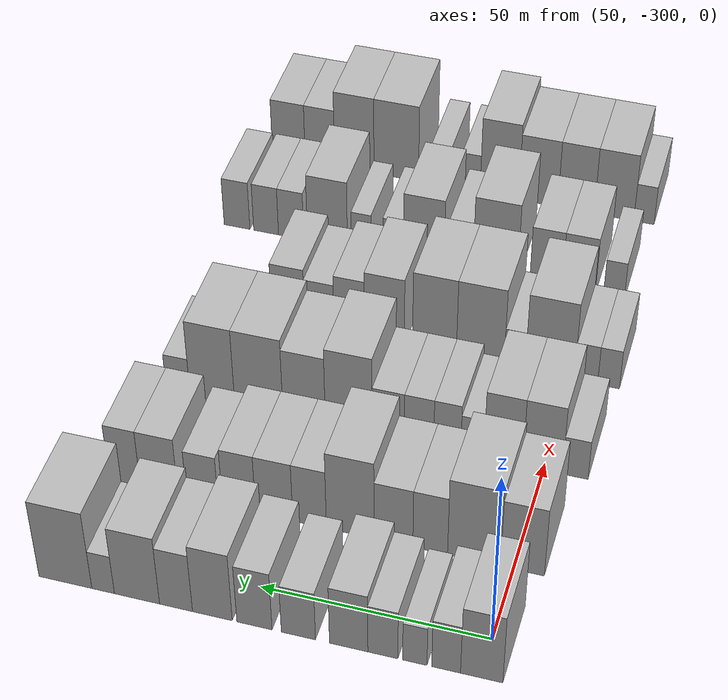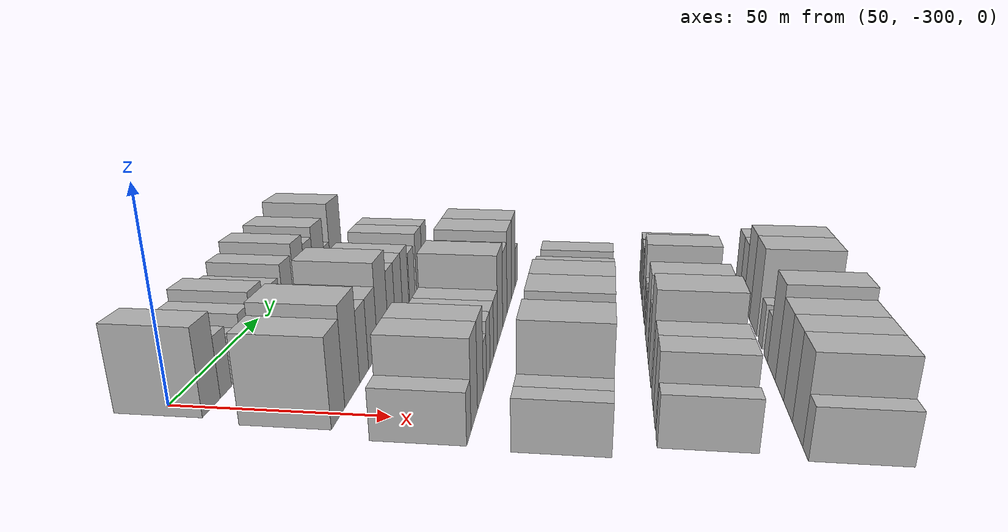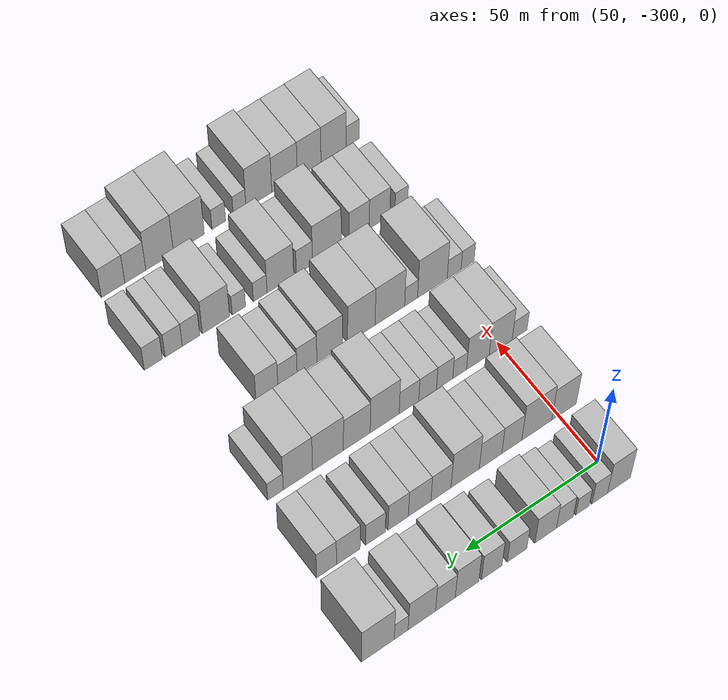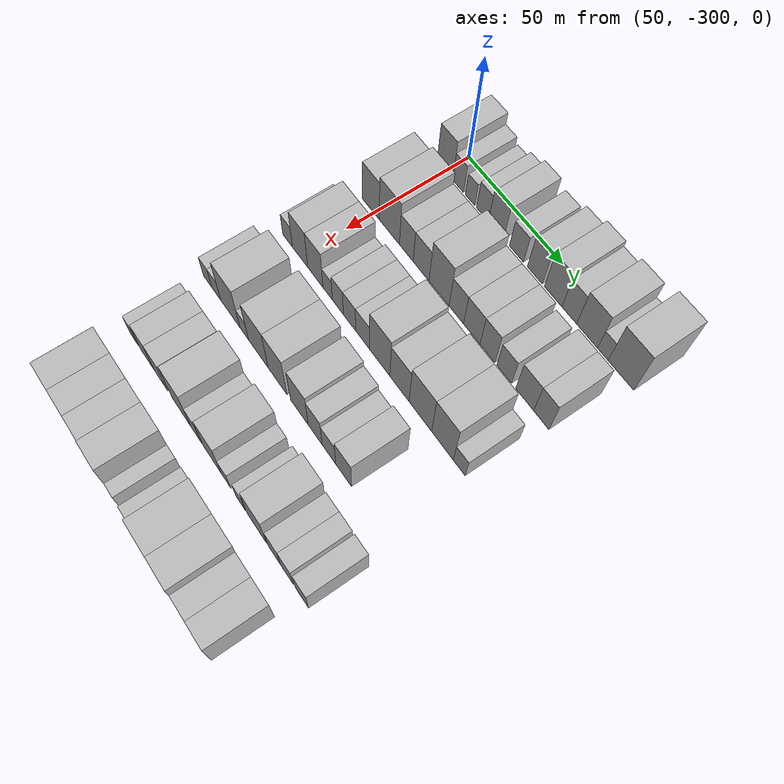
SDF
<sdf version="1.6">
 <world name="default">
  <model name="building_24">
   <static>1</static>
   <pose>50.0000 -300.2380 0 0.000000 0.000000 0.000000</pose>
   <link name="link">
    <pose>0 0 10.50 0 0 0</pose>
    <collision name="collision"><geometry><box><size>20.0000 8.7996 21.0000</size></box></geometry></collision>
    <visual name="visual">
     <cast_shadows>0</cast_shadows>
     <geometry><box><size>20.0000 8.7996 21.0000</size></box></geometry>
     <material>
      <script>
       <uri>model://HANNAS_wall/materials/scripts</uri>
       <uri>model://HANNAS_wall/materials/textures</uri>
       <name>vrc/HANNAS_wall</name>
      </script>
     </material>
    </visual>
   </link>
  </model>
  <model name="building_25">
   <static>1</static>
   <pose>50.0000 -292.8315 0 0.000000 0.000000 0.000000</pose>
   <link name="link">
    <pose>0 0 7.50 0 0 0</pose>
    <collision name="collision"><geometry><box><size>20.0000 6.0135 15.0000</size></box></geometry></collision>
    <visual name="visual">
     <cast_shadows>0</cast_shadows>
     <geometry><box><size>20.0000 6.0135 15.0000</size></box></geometry>
     <material>
      <script>
       <uri>model://HANNAS_wall/materials/scripts</uri>
       <uri>model://HANNAS_wall/materials/textures</uri>
       <name>vrc/HANNAS_wall</name>
      </script>
     </material>
    </visual>
   </link>
  </model>
  <model name="building_26">
   <static>1</static>
   <pose>50.0000 -286.2679 0 0.000000 0.000000 0.000000</pose>
   <link name="link">
    <pose>0 0 6.00 0 0 0</pose>
    <collision name="collision"><geometry><box><size>20.0000 5.1137 12.0000</size></box></geometry></collision>
    <visual name="visual">
     <cast_shadows>0</cast_shadows>
     <geometry><box><size>20.0000 5.1137 12.0000</size></box></geometry>
     <material>
      <script>
       <uri>model://HANNAS_wall/materials/scripts</uri>
       <uri>model://HANNAS_wall/materials/textures</uri>
       <name>vrc/HANNAS_wall</name>
      </script>
     </material>
    </visual>
   </link>
  </model>
  <model name="building_27">
   <static>1</static>
   <pose>50.0000 -279.5277 0 0.000000 0.000000 0.000000</pose>
   <link name="link">
    <pose>0 0 7.50 0 0 0</pose>
    <collision name="collision"><geometry><box><size>20.0000 6.3666 15.0000</size></box></geometry></collision>
    <visual name="visual">
     <cast_shadows>0</cast_shadows>
     <geometry><box><size>20.0000 6.3666 15.0000</size></box></geometry>
     <material>
      <script>
       <uri>model://HANNAS_wall/materials/scripts</uri>
       <uri>model://HANNAS_wall/materials/textures</uri>
       <name>vrc/HANNAS_wall</name>
      </script>
     </material>
    </visual>
   </link>
  </model>
  <model name="building_28">
   <static>1</static>
   <pose>50.0000 -272.2532 0 0.000000 0.000000 0.000000</pose>
   <link name="link">
    <pose>0 0 9.00 0 0 0</pose>
    <collision name="collision"><geometry><box><size>20.0000 8.1825 18.0000</size></box></geometry></collision>
    <visual name="visual">
     <cast_shadows>0</cast_shadows>
     <geometry><box><size>20.0000 8.1825 18.0000</size></box></geometry>
     <material>
      <script>
       <uri>model://HANNAS_wall/materials/scripts</uri>
       <uri>model://HANNAS_wall/materials/textures</uri>
       <name>vrc/HANNAS_wall</name>
      </script>
     </material>
    </visual>
   </link>
  </model>
  <model name="building_29">
   <static>1</static>
   <pose>50.0000 -261.4840 0 0.000000 0.000000 0.000000</pose>
   <link name="link">
    <pose>0 0 7.50 0 0 0</pose>
    <collision name="collision"><geometry><box><size>20.0000 7.3559 15.0000</size></box></geometry></collision>
    <visual name="visual">
     <cast_shadows>0</cast_shadows>
     <geometry><box><size>20.0000 7.3559 15.0000</size></box></geometry>
     <material>
      <script>
       <uri>model://HANNAS_wall/materials/scripts</uri>
       <uri>model://HANNAS_wall/materials/textures</uri>
       <name>vrc/HANNAS_wall</name>
      </script>
     </material>
    </visual>
   </link>
  </model>
  <model name="building_30">
   <static>1</static>
   <pose>50.0000 -251.9875 0 0.000000 0.000000 0.000000</pose>
   <link name="link">
    <pose>0 0 9.00 0 0 0</pose>
    <collision name="collision"><geometry><box><size>20.0000 7.6372 18.0000</size></box></geometry></collision>
    <visual name="visual">
     <cast_shadows>0</cast_shadows>
     <geometry><box><size>20.0000 7.6372 18.0000</size></box></geometry>
     <material>
      <script>
       <uri>model://HANNAS_wall/materials/scripts</uri>
       <uri>model://HANNAS_wall/materials/textures</uri>
       <name>vrc/HANNAS_wall</name>
      </script>
     </material>
    </visual>
   </link>
  </model>
  <model name="building_31">
   <static>1</static>
   <pose>50.0000 -242.8185 0 0.000000 0.000000 0.000000</pose>
   <link name="link">
    <pose>0 0 10.50 0 0 0</pose>
    <collision name="collision"><geometry><box><size>20.0000 8.7008 21.0000</size></box></geometry></collision>
    <visual name="visual">
     <cast_shadows>0</cast_shadows>
     <geometry><box><size>20.0000 8.7008 21.0000</size></box></geometry>
     <material>
      <script>
       <uri>model://HANNAS_wall/materials/scripts</uri>
       <uri>model://HANNAS_wall/materials/textures</uri>
       <name>vrc/HANNAS_wall</name>
      </script>
     </material>
    </visual>
   </link>
  </model>
  <model name="building_32">
   <static>1</static>
   <pose>50.0000 -234.8366 0 0.000000 0.000000 0.000000</pose>
   <link name="link">
    <pose>0 0 9.00 0 0 0</pose>
    <collision name="collision"><geometry><box><size>20.0000 7.2631 18.0000</size></box></geometry></collision>
    <visual name="visual">
     <cast_shadows>0</cast_shadows>
     <geometry><box><size>20.0000 7.2631 18.0000</size></box></geometry>
     <material>
      <script>
       <uri>model://HANNAS_wall/materials/scripts</uri>
       <uri>model://HANNAS_wall/materials/textures</uri>
       <name>vrc/HANNAS_wall</name>
      </script>
     </material>
    </visual>
   </link>
  </model>
  <model name="building_33">
   <static>1</static>
   <pose>50.0000 -226.1902 0 0.000000 0.000000 0.000000</pose>
   <link name="link">
    <pose>0 0 10.50 0 0 0</pose>
    <collision name="collision"><geometry><box><size>20.0000 10.0296 21.0000</size></box></geometry></collision>
    <visual name="visual">
     <cast_shadows>0</cast_shadows>
     <geometry><box><size>20.0000 10.0296 21.0000</size></box></geometry>
     <material>
      <script>
       <uri>model://HANNAS_wall/materials/scripts</uri>
       <uri>model://HANNAS_wall/materials/textures</uri>
       <name>vrc/HANNAS_wall</name>
      </script>
     </material>
    </visual>
   </link>
  </model>
  <model name="building_34">
   <static>1</static>
   <pose>50.0000 -218.6514 0 0.000000 0.000000 0.000000</pose>
   <link name="link">
    <pose>0 0 6.00 0 0 0</pose>
    <collision name="collision"><geometry><box><size>20.0000 5.0481 12.0000</size></box></geometry></collision>
    <visual name="visual">
     <cast_shadows>0</cast_shadows>
     <geometry><box><size>20.0000 5.0481 12.0000</size></box></geometry>
     <material>
      <script>
       <uri>model://HANNAS_wall/materials/scripts</uri>
       <uri>model://HANNAS_wall/materials/textures</uri>
       <name>vrc/HANNAS_wall</name>
      </script>
     </material>
    </visual>
   </link>
  </model>
  <model name="building_35">
   <static>1</static>
   <pose>50.0000 -210.1765 0 0.000000 0.000000 0.000000</pose>
   <link name="link">
    <pose>0 0 12.00 0 0 0</pose>
    <collision name="collision"><geometry><box><size>20.0000 11.9017 24.0000</size></box></geometry></collision>
    <visual name="visual">
     <cast_shadows>0</cast_shadows>
     <geometry><box><size>20.0000 11.9017 24.0000</size></box></geometry>
     <material>
      <script>
       <uri>model://HANNAS_wall/materials/scripts</uri>
       <uri>model://HANNAS_wall/materials/textures</uri>
       <name>vrc/HANNAS_wall</name>
      </script>
     </material>
    </visual>
   </link>
  </model>
  <model name="building_144">
   <static>1</static>
   <pose>79.0000 -301.9454 0 0.000000 0.000000 0.000000</pose>
   <link name="link">
    <pose>0 0 10.50 0 0 0</pose>
    <collision name="collision"><geometry><box><size>20.0000 9.5213 21.0000</size></box></geometry></collision>
    <visual name="visual">
     <cast_shadows>0</cast_shadows>
     <geometry><box><size>20.0000 9.5213 21.0000</size></box></geometry>
     <material>
      <script>
       <uri>model://HANNAS_wall/materials/scripts</uri>
       <uri>model://HANNAS_wall/materials/textures</uri>
       <name>vrc/HANNAS_wall</name>
      </script>
     </material>
    </visual>
   </link>
  </model>
  <model name="building_145">
   <static>1</static>
   <pose>79.0000 -291.4034 0 0.000000 0.000000 0.000000</pose>
   <link name="link">
    <pose>0 0 12.00 0 0 0</pose>
    <collision name="collision"><geometry><box><size>20.0000 11.5627 24.0000</size></box></geometry></collision>
    <visual name="visual">
     <cast_shadows>0</cast_shadows>
     <geometry><box><size>20.0000 11.5627 24.0000</size></box></geometry>
     <material>
      <script>
       <uri>model://HANNAS_wall/materials/scripts</uri>
       <uri>model://HANNAS_wall/materials/textures</uri>
       <name>vrc/HANNAS_wall</name>
      </script>
     </material>
    </visual>
   </link>
  </model>
  <model name="building_146">
   <static>1</static>
   <pose>79.0000 -281.8035 0 0.000000 0.000000 0.000000</pose>
   <link name="link">
    <pose>0 0 9.00 0 0 0</pose>
    <collision name="collision"><geometry><box><size>20.0000 7.6371 18.0000</size></box></geometry></collision>
    <visual name="visual">
     <cast_shadows>0</cast_shadows>
     <geometry><box><size>20.0000 7.6371 18.0000</size></box></geometry>
     <material>
      <script>
       <uri>model://HANNAS_wall/materials/scripts</uri>
       <uri>model://HANNAS_wall/materials/textures</uri>
       <name>vrc/HANNAS_wall</name>
      </script>
     </material>
    </visual>
   </link>
  </model>
  <model name="building_147">
   <static>1</static>
   <pose>79.0000 -273.6877 0 0.000000 0.000000 0.000000</pose>
   <link name="link">
    <pose>0 0 9.00 0 0 0</pose>
    <collision name="collision"><geometry><box><size>20.0000 8.5946 18.0000</size></box></geometry></collision>
    <visual name="visual">
     <cast_shadows>0</cast_shadows>
     <geometry><box><size>20.0000 8.5946 18.0000</size></box></geometry>
     <material>
      <script>
       <uri>model://HANNAS_wall/materials/scripts</uri>
       <uri>model://HANNAS_wall/materials/textures</uri>
       <name>vrc/HANNAS_wall</name>
      </script>
     </material>
    </visual>
   </link>
  </model>
  <model name="building_148">
   <static>1</static>
   <pose>79.0000 -264.0489 0 0.000000 0.000000 0.000000</pose>
   <link name="link">
    <pose>0 0 12.00 0 0 0</pose>
    <collision name="collision"><geometry><box><size>20.0000 10.6830 24.0000</size></box></geometry></collision>
    <visual name="visual">
     <cast_shadows>0</cast_shadows>
     <geometry><box><size>20.0000 10.6830 24.0000</size></box></geometry>
     <material>
      <script>
       <uri>model://HANNAS_wall/materials/scripts</uri>
       <uri>model://HANNAS_wall/materials/textures</uri>
       <name>vrc/HANNAS_wall</name>
      </script>
     </material>
    </visual>
   </link>
  </model>
  <model name="building_149">
   <static>1</static>
   <pose>79.0000 -254.9181 0 0.000000 0.000000 0.000000</pose>
   <link name="link">
    <pose>0 0 9.00 0 0 0</pose>
    <collision name="collision"><geometry><box><size>20.0000 7.5784 18.0000</size></box></geometry></collision>
    <visual name="visual">
     <cast_shadows>0</cast_shadows>
     <geometry><box><size>20.0000 7.5784 18.0000</size></box></geometry>
     <material>
      <script>
       <uri>model://HANNAS_wall/materials/scripts</uri>
       <uri>model://HANNAS_wall/materials/textures</uri>
       <name>vrc/HANNAS_wall</name>
      </script>
     </material>
    </visual>
   </link>
  </model>
  <model name="building_150">
   <static>1</static>
   <pose>79.0000 -246.9091 0 0.000000 0.000000 0.000000</pose>
   <link name="link">
    <pose>0 0 9.00 0 0 0</pose>
    <collision name="collision"><geometry><box><size>20.0000 8.4396 18.0000</size></box></geometry></collision>
    <visual name="visual">
     <cast_shadows>0</cast_shadows>
     <geometry><box><size>20.0000 8.4396 18.0000</size></box></geometry>
     <material>
      <script>
       <uri>model://HANNAS_wall/materials/scripts</uri>
       <uri>model://HANNAS_wall/materials/textures</uri>
       <name>vrc/HANNAS_wall</name>
      </script>
     </material>
    </visual>
   </link>
  </model>
  <model name="building_151">
   <static>1</static>
   <pose>79.0000 -238.9096 0 0.000000 0.000000 0.000000</pose>
   <link name="link">
    <pose>0 0 9.00 0 0 0</pose>
    <collision name="collision"><geometry><box><size>20.0000 7.5594 18.0000</size></box></geometry></collision>
    <visual name="visual">
     <cast_shadows>0</cast_shadows>
     <geometry><box><size>20.0000 7.5594 18.0000</size></box></geometry>
     <material>
      <script>
       <uri>model://HANNAS_wall/materials/scripts</uri>
       <uri>model://HANNAS_wall/materials/textures</uri>
       <name>vrc/HANNAS_wall</name>
      </script>
     </material>
    </visual>
   </link>
  </model>
  <model name="building_152">
   <static>1</static>
   <pose>79.0000 -230.4880 0 0.000000 0.000000 0.000000</pose>
   <link name="link">
    <pose>0 0 7.50 0 0 0</pose>
    <collision name="collision"><geometry><box><size>20.0000 7.2839 15.0000</size></box></geometry></collision>
    <visual name="visual">
     <cast_shadows>0</cast_shadows>
     <geometry><box><size>20.0000 7.2839 15.0000</size></box></geometry>
     <material>
      <script>
       <uri>model://HANNAS_wall/materials/scripts</uri>
       <uri>model://HANNAS_wall/materials/textures</uri>
       <name>vrc/HANNAS_wall</name>
      </script>
     </material>
    </visual>
   </link>
  </model>
  <model name="building_153">
   <static>1</static>
   <pose>79.0000 -220.4977 0 0.000000 0.000000 0.000000</pose>
   <link name="link">
    <pose>0 0 9.00 0 0 0</pose>
    <collision name="collision"><geometry><box><size>20.0000 8.6966 18.0000</size></box></geometry></collision>
    <visual name="visual">
     <cast_shadows>0</cast_shadows>
     <geometry><box><size>20.0000 8.6966 18.0000</size></box></geometry>
     <material>
      <script>
       <uri>model://HANNAS_wall/materials/scripts</uri>
       <uri>model://HANNAS_wall/materials/textures</uri>
       <name>vrc/HANNAS_wall</name>
      </script>
     </material>
    </visual>
   </link>
  </model>
  <model name="building_154">
   <static>1</static>
   <pose>79.0000 -212.5231 0 0.000000 0.000000 0.000000</pose>
   <link name="link">
    <pose>0 0 9.00 0 0 0</pose>
    <collision name="collision"><geometry><box><size>20.0000 7.2527 18.0000</size></box></geometry></collision>
    <visual name="visual">
     <cast_shadows>0</cast_shadows>
     <geometry><box><size>20.0000 7.2527 18.0000</size></box></geometry>
     <material>
      <script>
       <uri>model://HANNAS_wall/materials/scripts</uri>
       <uri>model://HANNAS_wall/materials/textures</uri>
       <name>vrc/HANNAS_wall</name>
      </script>
     </material>
    </visual>
   </link>
  </model>
  <model name="building_255">
   <static>1</static>
   <pose>108.0000 -307.1762 0 0.000000 0.000000 0.000000</pose>
   <link name="link">
    <pose>0 0 6.00 0 0 0</pose>
    <collision name="collision"><geometry><box><size>20.0000 5.7641 12.0000</size></box></geometry></collision>
    <visual name="visual">
     <cast_shadows>0</cast_shadows>
     <geometry><box><size>20.0000 5.7641 12.0000</size></box></geometry>
     <material>
      <script>
       <uri>model://HANNAS_wall/materials/scripts</uri>
       <uri>model://HANNAS_wall/materials/textures</uri>
       <name>vrc/HANNAS_wall</name>
      </script>
     </material>
    </visual>
   </link>
  </model>
  <model name="building_256">
   <static>1</static>
   <pose>108.0000 -299.8109 0 0.000000 0.000000 0.000000</pose>
   <link name="link">
    <pose>0 0 10.50 0 0 0</pose>
    <collision name="collision"><geometry><box><size>20.0000 8.9666 21.0000</size></box></geometry></collision>
    <visual name="visual">
     <cast_shadows>0</cast_shadows>
     <geometry><box><size>20.0000 8.9666 21.0000</size></box></geometry>
     <material>
      <script>
       <uri>model://HANNAS_wall/materials/scripts</uri>
       <uri>model://HANNAS_wall/materials/textures</uri>
       <name>vrc/HANNAS_wall</name>
      </script>
     </material>
    </visual>
   </link>
  </model>
  <model name="building_257">
   <static>1</static>
   <pose>108.0000 -290.8929 0 0.000000 0.000000 0.000000</pose>
   <link name="link">
    <pose>0 0 10.50 0 0 0</pose>
    <collision name="collision"><geometry><box><size>20.0000 8.8693 21.0000</size></box></geometry></collision>
    <visual name="visual">
     <cast_shadows>0</cast_shadows>
     <geometry><box><size>20.0000 8.8693 21.0000</size></box></geometry>
     <material>
      <script>
       <uri>model://HANNAS_wall/materials/scripts</uri>
       <uri>model://HANNAS_wall/materials/textures</uri>
       <name>vrc/HANNAS_wall</name>
      </script>
     </material>
    </visual>
   </link>
  </model>
  <model name="building_258">
   <static>1</static>
   <pose>108.0000 -283.8055 0 0.000000 0.000000 0.000000</pose>
   <link name="link">
    <pose>0 0 6.00 0 0 0</pose>
    <collision name="collision"><geometry><box><size>20.0000 5.3054 12.0000</size></box></geometry></collision>
    <visual name="visual">
     <cast_shadows>0</cast_shadows>
     <geometry><box><size>20.0000 5.3054 12.0000</size></box></geometry>
     <material>
      <script>
       <uri>model://HANNAS_wall/materials/scripts</uri>
       <uri>model://HANNAS_wall/materials/textures</uri>
       <name>vrc/HANNAS_wall</name>
      </script>
     </material>
    </visual>
   </link>
  </model>
  <model name="building_259">
   <static>1</static>
   <pose>108.0000 -278.0359 0 0.000000 0.000000 0.000000</pose>
   <link name="link">
    <pose>0 0 7.50 0 0 0</pose>
    <collision name="collision"><geometry><box><size>20.0000 6.2338 15.0000</size></box></geometry></collision>
    <visual name="visual">
     <cast_shadows>0</cast_shadows>
     <geometry><box><size>20.0000 6.2338 15.0000</size></box></geometry>
     <material>
      <script>
       <uri>model://HANNAS_wall/materials/scripts</uri>
       <uri>model://HANNAS_wall/materials/textures</uri>
       <name>vrc/HANNAS_wall</name>
      </script>
     </material>
    </visual>
   </link>
  </model>
  <model name="building_260">
   <static>1</static>
   <pose>108.0000 -271.5213 0 0.000000 0.000000 0.000000</pose>
   <link name="link">
    <pose>0 0 7.50 0 0 0</pose>
    <collision name="collision"><geometry><box><size>20.0000 6.7955 15.0000</size></box></geometry></collision>
    <visual name="visual">
     <cast_shadows>0</cast_shadows>
     <geometry><box><size>20.0000 6.7955 15.0000</size></box></geometry>
     <material>
      <script>
       <uri>model://HANNAS_wall/materials/scripts</uri>
       <uri>model://HANNAS_wall/materials/textures</uri>
       <name>vrc/HANNAS_wall</name>
      </script>
     </material>
    </visual>
   </link>
  </model>
  <model name="building_261">
   <static>1</static>
   <pose>108.0000 -264.3937 0 0.000000 0.000000 0.000000</pose>
   <link name="link">
    <pose>0 0 7.50 0 0 0</pose>
    <collision name="collision"><geometry><box><size>20.0000 7.4597 15.0000</size></box></geometry></collision>
    <visual name="visual">
     <cast_shadows>0</cast_shadows>
     <geometry><box><size>20.0000 7.4597 15.0000</size></box></geometry>
     <material>
      <script>
       <uri>model://HANNAS_wall/materials/scripts</uri>
       <uri>model://HANNAS_wall/materials/textures</uri>
       <name>vrc/HANNAS_wall</name>
      </script>
     </material>
    </visual>
   </link>
  </model>
  <model name="building_262">
   <static>1</static>
   <pose>108.0000 -255.1674 0 0.000000 0.000000 0.000000</pose>
   <link name="link">
    <pose>0 0 12.00 0 0 0</pose>
    <collision name="collision"><geometry><box><size>20.0000 10.9929 24.0000</size></box></geometry></collision>
    <visual name="visual">
     <cast_shadows>0</cast_shadows>
     <geometry><box><size>20.0000 10.9929 24.0000</size></box></geometry>
     <material>
      <script>
       <uri>model://HANNAS_wall/materials/scripts</uri>
       <uri>model://HANNAS_wall/materials/textures</uri>
       <name>vrc/HANNAS_wall</name>
      </script>
     </material>
    </visual>
   </link>
  </model>
  <model name="building_263">
   <static>1</static>
   <pose>108.0000 -244.6625 0 0.000000 0.000000 0.000000</pose>
   <link name="link">
    <pose>0 0 10.50 0 0 0</pose>
    <collision name="collision"><geometry><box><size>20.0000 10.0168 21.0000</size></box></geometry></collision>
    <visual name="visual">
     <cast_shadows>0</cast_shadows>
     <geometry><box><size>20.0000 10.0168 21.0000</size></box></geometry>
     <material>
      <script>
       <uri>model://HANNAS_wall/materials/scripts</uri>
       <uri>model://HANNAS_wall/materials/textures</uri>
       <name>vrc/HANNAS_wall</name>
      </script>
     </material>
    </visual>
   </link>
  </model>
  <model name="building_264">
   <static>1</static>
   <pose>108.0000 -233.8942 0 0.000000 0.000000 0.000000</pose>
   <link name="link">
    <pose>0 0 12.00 0 0 0</pose>
    <collision name="collision"><geometry><box><size>20.0000 11.5197 24.0000</size></box></geometry></collision>
    <visual name="visual">
     <cast_shadows>0</cast_shadows>
     <geometry><box><size>20.0000 11.5197 24.0000</size></box></geometry>
     <material>
      <script>
       <uri>model://HANNAS_wall/materials/scripts</uri>
       <uri>model://HANNAS_wall/materials/textures</uri>
       <name>vrc/HANNAS_wall</name>
      </script>
     </material>
    </visual>
   </link>
  </model>
  <model name="building_265">
   <static>1</static>
   <pose>108.0000 -222.7475 0 0.000000 0.000000 0.000000</pose>
   <link name="link">
    <pose>0 0 12.00 0 0 0</pose>
    <collision name="collision"><geometry><box><size>20.0000 10.7737 24.0000</size></box></geometry></collision>
    <visual name="visual">
     <cast_shadows>0</cast_shadows>
     <geometry><box><size>20.0000 10.7737 24.0000</size></box></geometry>
     <material>
      <script>
       <uri>model://HANNAS_wall/materials/scripts</uri>
       <uri>model://HANNAS_wall/materials/textures</uri>
       <name>vrc/HANNAS_wall</name>
      </script>
     </material>
    </visual>
   </link>
  </model>
  <model name="building_266">
   <static>1</static>
   <pose>108.0000 -214.4751 0 0.000000 0.000000 0.000000</pose>
   <link name="link">
    <pose>0 0 6.00 0 0 0</pose>
    <collision name="collision"><geometry><box><size>20.0000 5.7711 12.0000</size></box></geometry></collision>
    <visual name="visual">
     <cast_shadows>0</cast_shadows>
     <geometry><box><size>20.0000 5.7711 12.0000</size></box></geometry>
     <material>
      <script>
       <uri>model://HANNAS_wall/materials/scripts</uri>
       <uri>model://HANNAS_wall/materials/textures</uri>
       <name>vrc/HANNAS_wall</name>
      </script>
     </material>
    </visual>
   </link>
  </model>
  <model name="building_366">
   <static>1</static>
   <pose>137.0000 -308.8088 0 0.000000 0.000000 0.000000</pose>
   <link name="link">
    <pose>0 0 6.00 0 0 0</pose>
    <collision name="collision"><geometry><box><size>20.0000 5.0994 12.0000</size></box></geometry></collision>
    <visual name="visual">
     <cast_shadows>0</cast_shadows>
     <geometry><box><size>20.0000 5.0994 12.0000</size></box></geometry>
     <material>
      <script>
       <uri>model://HANNAS_wall/materials/scripts</uri>
       <uri>model://HANNAS_wall/materials/textures</uri>
       <name>vrc/HANNAS_wall</name>
      </script>
     </material>
    </visual>
   </link>
  </model>
  <model name="building_367">
   <static>1</static>
   <pose>137.0000 -303.5202 0 0.000000 0.000000 0.000000</pose>
   <link name="link">
    <pose>0 0 6.00 0 0 0</pose>
    <collision name="collision"><geometry><box><size>20.0000 5.4777 12.0000</size></box></geometry></collision>
    <visual name="visual">
     <cast_shadows>0</cast_shadows>
     <geometry><box><size>20.0000 5.4777 12.0000</size></box></geometry>
     <material>
      <script>
       <uri>model://HANNAS_wall/materials/scripts</uri>
       <uri>model://HANNAS_wall/materials/textures</uri>
       <name>vrc/HANNAS_wall</name>
      </script>
     </material>
    </visual>
   </link>
  </model>
  <model name="building_368">
   <static>1</static>
   <pose>137.0000 -294.9799 0 0.000000 0.000000 0.000000</pose>
   <link name="link">
    <pose>0 0 12.00 0 0 0</pose>
    <collision name="collision"><geometry><box><size>20.0000 11.6030 24.0000</size></box></geometry></collision>
    <visual name="visual">
     <cast_shadows>0</cast_shadows>
     <geometry><box><size>20.0000 11.6030 24.0000</size></box></geometry>
     <material>
      <script>
       <uri>model://HANNAS_wall/materials/scripts</uri>
       <uri>model://HANNAS_wall/materials/textures</uri>
       <name>vrc/HANNAS_wall</name>
      </script>
     </material>
    </visual>
   </link>
  </model>
  <model name="building_369">
   <static>1</static>
   <pose>137.0000 -286.6720 0 0.000000 0.000000 0.000000</pose>
   <link name="link">
    <pose>0 0 6.00 0 0 0</pose>
    <collision name="collision"><geometry><box><size>20.0000 5.0128 12.0000</size></box></geometry></collision>
    <visual name="visual">
     <cast_shadows>0</cast_shadows>
     <geometry><box><size>20.0000 5.0128 12.0000</size></box></geometry>
     <material>
      <script>
       <uri>model://HANNAS_wall/materials/scripts</uri>
       <uri>model://HANNAS_wall/materials/textures</uri>
       <name>vrc/HANNAS_wall</name>
      </script>
     </material>
    </visual>
   </link>
  </model>
  <model name="building_370">
   <static>1</static>
   <pose>137.0000 -278.4467 0 0.000000 0.000000 0.000000</pose>
   <link name="link">
    <pose>0 0 12.00 0 0 0</pose>
    <collision name="collision"><geometry><box><size>20.0000 11.4378 24.0000</size></box></geometry></collision>
    <visual name="visual">
     <cast_shadows>0</cast_shadows>
     <geometry><box><size>20.0000 11.4378 24.0000</size></box></geometry>
     <material>
      <script>
       <uri>model://HANNAS_wall/materials/scripts</uri>
       <uri>model://HANNAS_wall/materials/textures</uri>
       <name>vrc/HANNAS_wall</name>
      </script>
     </material>
    </visual>
   </link>
  </model>
  <model name="building_371">
   <static>1</static>
   <pose>137.0000 -267.4425 0 0.000000 0.000000 0.000000</pose>
   <link name="link">
    <pose>0 0 12.00 0 0 0</pose>
    <collision name="collision"><geometry><box><size>20.0000 10.5707 24.0000</size></box></geometry></collision>
    <visual name="visual">
     <cast_shadows>0</cast_shadows>
     <geometry><box><size>20.0000 10.5707 24.0000</size></box></geometry>
     <material>
      <script>
       <uri>model://HANNAS_wall/materials/scripts</uri>
       <uri>model://HANNAS_wall/materials/textures</uri>
       <name>vrc/HANNAS_wall</name>
      </script>
     </material>
    </visual>
   </link>
  </model>
  <model name="building_372">
   <static>1</static>
   <pose>137.0000 -255.3165 0 0.000000 0.000000 0.000000</pose>
   <link name="link">
    <pose>0 0 10.50 0 0 0</pose>
    <collision name="collision"><geometry><box><size>20.0000 9.6813 21.0000</size></box></geometry></collision>
    <visual name="visual">
     <cast_shadows>0</cast_shadows>
     <geometry><box><size>20.0000 9.6813 21.0000</size></box></geometry>
     <material>
      <script>
       <uri>model://HANNAS_wall/materials/scripts</uri>
       <uri>model://HANNAS_wall/materials/textures</uri>
       <name>vrc/HANNAS_wall</name>
      </script>
     </material>
    </visual>
   </link>
  </model>
  <model name="building_373">
   <static>1</static>
   <pose>137.0000 -246.7420 0 0.000000 0.000000 0.000000</pose>
   <link name="link">
    <pose>0 0 9.00 0 0 0</pose>
    <collision name="collision"><geometry><box><size>20.0000 7.4678 18.0000</size></box></geometry></collision>
    <visual name="visual">
     <cast_shadows>0</cast_shadows>
     <geometry><box><size>20.0000 7.4678 18.0000</size></box></geometry>
     <material>
      <script>
       <uri>model://HANNAS_wall/materials/scripts</uri>
       <uri>model://HANNAS_wall/materials/textures</uri>
       <name>vrc/HANNAS_wall</name>
      </script>
     </material>
    </visual>
   </link>
  </model>
  <model name="building_374">
   <static>1</static>
   <pose>137.0000 -239.3867 0 0.000000 0.000000 0.000000</pose>
   <link name="link">
    <pose>0 0 7.50 0 0 0</pose>
    <collision name="collision"><geometry><box><size>20.0000 7.2429 15.0000</size></box></geometry></collision>
    <visual name="visual">
     <cast_shadows>0</cast_shadows>
     <geometry><box><size>20.0000 7.2429 15.0000</size></box></geometry>
     <material>
      <script>
       <uri>model://HANNAS_wall/materials/scripts</uri>
       <uri>model://HANNAS_wall/materials/textures</uri>
       <name>vrc/HANNAS_wall</name>
      </script>
     </material>
    </visual>
   </link>
  </model>
  <model name="building_375">
   <static>1</static>
   <pose>137.0000 -231.6654 0 0.000000 0.000000 0.000000</pose>
   <link name="link">
    <pose>0 0 9.00 0 0 0</pose>
    <collision name="collision"><geometry><box><size>20.0000 8.1998 18.0000</size></box></geometry></collision>
    <visual name="visual">
     <cast_shadows>0</cast_shadows>
     <geometry><box><size>20.0000 8.1998 18.0000</size></box></geometry>
     <material>
      <script>
       <uri>model://HANNAS_wall/materials/scripts</uri>
       <uri>model://HANNAS_wall/materials/textures</uri>
       <name>vrc/HANNAS_wall</name>
      </script>
     </material>
    </visual>
   </link>
  </model>
  <model name="building_474">
   <static>1</static>
   <pose>166.0000 -304.2577 0 0.000000 0.000000 0.000000</pose>
   <link name="link">
    <pose>0 0 6.00 0 0 0</pose>
    <collision name="collision"><geometry><box><size>20.0000 5.0799 12.0000</size></box></geometry></collision>
    <visual name="visual">
     <cast_shadows>0</cast_shadows>
     <geometry><box><size>20.0000 5.0799 12.0000</size></box></geometry>
     <material>
      <script>
       <uri>model://HANNAS_wall/materials/scripts</uri>
       <uri>model://HANNAS_wall/materials/textures</uri>
       <name>vrc/HANNAS_wall</name>
      </script>
     </material>
    </visual>
   </link>
  </model>
  <model name="building_475">
   <static>1</static>
   <pose>166.0000 -295.6537 0 0.000000 0.000000 0.000000</pose>
   <link name="link">
    <pose>0 0 9.00 0 0 0</pose>
    <collision name="collision"><geometry><box><size>20.0000 8.1283 18.0000</size></box></geometry></collision>
    <visual name="visual">
     <cast_shadows>0</cast_shadows>
     <geometry><box><size>20.0000 8.1283 18.0000</size></box></geometry>
     <material>
      <script>
       <uri>model://HANNAS_wall/materials/scripts</uri>
       <uri>model://HANNAS_wall/materials/textures</uri>
       <name>vrc/HANNAS_wall</name>
      </script>
     </material>
    </visual>
   </link>
  </model>
  <model name="building_476">
   <static>1</static>
   <pose>166.0000 -287.5940 0 0.000000 0.000000 0.000000</pose>
   <link name="link">
    <pose>0 0 9.00 0 0 0</pose>
    <collision name="collision"><geometry><box><size>20.0000 7.9911 18.0000</size></box></geometry></collision>
    <visual name="visual">
     <cast_shadows>0</cast_shadows>
     <geometry><box><size>20.0000 7.9911 18.0000</size></box></geometry>
     <material>
      <script>
       <uri>model://HANNAS_wall/materials/scripts</uri>
       <uri>model://HANNAS_wall/materials/textures</uri>
       <name>vrc/HANNAS_wall</name>
      </script>
     </material>
    </visual>
   </link>
  </model>
  <model name="building_477">
   <static>1</static>
   <pose>166.0000 -275.0353 0 0.000000 0.000000 0.000000</pose>
   <link name="link">
    <pose>0 0 12.00 0 0 0</pose>
    <collision name="collision"><geometry><box><size>20.0000 11.1262 24.0000</size></box></geometry></collision>
    <visual name="visual">
     <cast_shadows>0</cast_shadows>
     <geometry><box><size>20.0000 11.1262 24.0000</size></box></geometry>
     <material>
      <script>
       <uri>model://HANNAS_wall/materials/scripts</uri>
       <uri>model://HANNAS_wall/materials/textures</uri>
       <name>vrc/HANNAS_wall</name>
      </script>
     </material>
    </visual>
   </link>
  </model>
  <model name="building_478">
   <static>1</static>
   <pose>166.0000 -266.3565 0 0.000000 0.000000 0.000000</pose>
   <link name="link">
    <pose>0 0 7.50 0 0 0</pose>
    <collision name="collision"><geometry><box><size>20.0000 6.2316 15.0000</size></box></geometry></collision>
    <visual name="visual">
     <cast_shadows>0</cast_shadows>
     <geometry><box><size>20.0000 6.2316 15.0000</size></box></geometry>
     <material>
      <script>
       <uri>model://HANNAS_wall/materials/scripts</uri>
       <uri>model://HANNAS_wall/materials/textures</uri>
       <name>vrc/HANNAS_wall</name>
      </script>
     </material>
    </visual>
   </link>
  </model>
  <model name="building_479">
   <static>1</static>
   <pose>166.0000 -257.1090 0 0.000000 0.000000 0.000000</pose>
   <link name="link">
    <pose>0 0 10.50 0 0 0</pose>
    <collision name="collision"><geometry><box><size>20.0000 10.2634 21.0000</size></box></geometry></collision>
    <visual name="visual">
     <cast_shadows>0</cast_shadows>
     <geometry><box><size>20.0000 10.2634 21.0000</size></box></geometry>
     <material>
      <script>
       <uri>model://HANNAS_wall/materials/scripts</uri>
       <uri>model://HANNAS_wall/materials/textures</uri>
       <name>vrc/HANNAS_wall</name>
      </script>
     </material>
    </visual>
   </link>
  </model>
  <model name="building_480">
   <static>1</static>
   <pose>166.0000 -249.3738 0 0.000000 0.000000 0.000000</pose>
   <link name="link">
    <pose>0 0 6.00 0 0 0</pose>
    <collision name="collision"><geometry><box><size>20.0000 5.2069 12.0000</size></box></geometry></collision>
    <visual name="visual">
     <cast_shadows>0</cast_shadows>
     <geometry><box><size>20.0000 5.2069 12.0000</size></box></geometry>
     <material>
      <script>
       <uri>model://HANNAS_wall/materials/scripts</uri>
       <uri>model://HANNAS_wall/materials/textures</uri>
       <name>vrc/HANNAS_wall</name>
      </script>
     </material>
    </visual>
   </link>
  </model>
  <model name="building_481">
   <static>1</static>
   <pose>166.0000 -241.2482 0 0.000000 0.000000 0.000000</pose>
   <link name="link">
    <pose>0 0 6.00 0 0 0</pose>
    <collision name="collision"><geometry><box><size>20.0000 5.0442 12.0000</size></box></geometry></collision>
    <visual name="visual">
     <cast_shadows>0</cast_shadows>
     <geometry><box><size>20.0000 5.0442 12.0000</size></box></geometry>
     <material>
      <script>
       <uri>model://HANNAS_wall/materials/scripts</uri>
       <uri>model://HANNAS_wall/materials/textures</uri>
       <name>vrc/HANNAS_wall</name>
      </script>
     </material>
    </visual>
   </link>
  </model>
  <model name="building_482">
   <static>1</static>
   <pose>166.0000 -232.5890 0 0.000000 0.000000 0.000000</pose>
   <link name="link">
    <pose>0 0 10.50 0 0 0</pose>
    <collision name="collision"><geometry><box><size>20.0000 10.2742 21.0000</size></box></geometry></collision>
    <visual name="visual">
     <cast_shadows>0</cast_shadows>
     <geometry><box><size>20.0000 10.2742 21.0000</size></box></geometry>
     <material>
      <script>
       <uri>model://HANNAS_wall/materials/scripts</uri>
       <uri>model://HANNAS_wall/materials/textures</uri>
       <name>vrc/HANNAS_wall</name>
      </script>
     </material>
    </visual>
   </link>
  </model>
  <model name="building_483">
   <static>1</static>
   <pose>166.0000 -223.1881 0 0.000000 0.000000 0.000000</pose>
   <link name="link">
    <pose>0 0 7.50 0 0 0</pose>
    <collision name="collision"><geometry><box><size>20.0000 6.5275 15.0000</size></box></geometry></collision>
    <visual name="visual">
     <cast_shadows>0</cast_shadows>
     <geometry><box><size>20.0000 6.5275 15.0000</size></box></geometry>
     <material>
      <script>
       <uri>model://HANNAS_wall/materials/scripts</uri>
       <uri>model://HANNAS_wall/materials/textures</uri>
       <name>vrc/HANNAS_wall</name>
      </script>
     </material>
    </visual>
   </link>
  </model>
  <model name="building_484">
   <static>1</static>
   <pose>166.0000 -216.6967 0 0.000000 0.000000 0.000000</pose>
   <link name="link">
    <pose>0 0 7.50 0 0 0</pose>
    <collision name="collision"><geometry><box><size>20.0000 6.4553 15.0000</size></box></geometry></collision>
    <visual name="visual">
     <cast_shadows>0</cast_shadows>
     <geometry><box><size>20.0000 6.4553 15.0000</size></box></geometry>
     <material>
      <script>
       <uri>model://HANNAS_wall/materials/scripts</uri>
       <uri>model://HANNAS_wall/materials/textures</uri>
       <name>vrc/HANNAS_wall</name>
      </script>
     </material>
    </visual>
   </link>
  </model>
  <model name="building_485">
   <static>1</static>
   <pose>166.0000 -209.1067 0 0.000000 0.000000 0.000000</pose>
   <link name="link">
    <pose>0 0 7.50 0 0 0</pose>
    <collision name="collision"><geometry><box><size>20.0000 6.7247 15.0000</size></box></geometry></collision>
    <visual name="visual">
     <cast_shadows>0</cast_shadows>
     <geometry><box><size>20.0000 6.7247 15.0000</size></box></geometry>
     <material>
      <script>
       <uri>model://HANNAS_wall/materials/scripts</uri>
       <uri>model://HANNAS_wall/materials/textures</uri>
       <name>vrc/HANNAS_wall</name>
      </script>
     </material>
    </visual>
   </link>
  </model>
  <model name="building_592">
   <static>1</static>
   <pose>195.0000 -306.1250 0 0.000000 0.000000 0.000000</pose>
   <link name="link">
    <pose>0 0 6.00 0 0 0</pose>
    <collision name="collision"><geometry><box><size>20.0000 5.1168 12.0000</size></box></geometry></collision>
    <visual name="visual">
     <cast_shadows>0</cast_shadows>
     <geometry><box><size>20.0000 5.1168 12.0000</size></box></geometry>
     <material>
      <script>
       <uri>model://HANNAS_wall/materials/scripts</uri>
       <uri>model://HANNAS_wall/materials/textures</uri>
       <name>vrc/HANNAS_wall</name>
      </script>
     </material>
    </visual>
   </link>
  </model>
  <model name="building_593">
   <static>1</static>
   <pose>195.0000 -298.5454 0 0.000000 0.000000 0.000000</pose>
   <link name="link">
    <pose>0 0 10.50 0 0 0</pose>
    <collision name="collision"><geometry><box><size>20.0000 10.0424 21.0000</size></box></geometry></collision>
    <visual name="visual">
     <cast_shadows>0</cast_shadows>
     <geometry><box><size>20.0000 10.0424 21.0000</size></box></geometry>
     <material>
      <script>
       <uri>model://HANNAS_wall/materials/scripts</uri>
       <uri>model://HANNAS_wall/materials/textures</uri>
       <name>vrc/HANNAS_wall</name>
      </script>
     </material>
    </visual>
   </link>
  </model>
  <model name="building_594">
   <static>1</static>
   <pose>195.0000 -288.8574 0 0.000000 0.000000 0.000000</pose>
   <link name="link">
    <pose>0 0 10.50 0 0 0</pose>
    <collision name="collision"><geometry><box><size>20.0000 9.3335 21.0000</size></box></geometry></collision>
    <visual name="visual">
     <cast_shadows>0</cast_shadows>
     <geometry><box><size>20.0000 9.3335 21.0000</size></box></geometry>
     <material>
      <script>
       <uri>model://HANNAS_wall/materials/scripts</uri>
       <uri>model://HANNAS_wall/materials/textures</uri>
       <name>vrc/HANNAS_wall</name>
      </script>
     </material>
    </visual>
   </link>
  </model>
  <model name="building_595">
   <static>1</static>
   <pose>195.0000 -279.1688 0 0.000000 0.000000 0.000000</pose>
   <link name="link">
    <pose>0 0 10.50 0 0 0</pose>
    <collision name="collision"><geometry><box><size>20.0000 10.0438 21.0000</size></box></geometry></collision>
    <visual name="visual">
     <cast_shadows>0</cast_shadows>
     <geometry><box><size>20.0000 10.0438 21.0000</size></box></geometry>
     <material>
      <script>
       <uri>model://HANNAS_wall/materials/scripts</uri>
       <uri>model://HANNAS_wall/materials/textures</uri>
       <name>vrc/HANNAS_wall</name>
      </script>
     </material>
    </visual>
   </link>
  </model>
  <model name="building_596">
   <static>1</static>
   <pose>195.0000 -269.1298 0 0.000000 0.000000 0.000000</pose>
   <link name="link">
    <pose>0 0 12.00 0 0 0</pose>
    <collision name="collision"><geometry><box><size>20.0000 10.0341 24.0000</size></box></geometry></collision>
    <visual name="visual">
     <cast_shadows>0</cast_shadows>
     <geometry><box><size>20.0000 10.0341 24.0000</size></box></geometry>
     <material>
      <script>
       <uri>model://HANNAS_wall/materials/scripts</uri>
       <uri>model://HANNAS_wall/materials/textures</uri>
       <name>vrc/HANNAS_wall</name>
      </script>
     </material>
    </visual>
   </link>
  </model>
  <model name="building_597">
   <static>1</static>
   <pose>195.0000 -261.6687 0 0.000000 0.000000 0.000000</pose>
   <link name="link">
    <pose>0 0 6.00 0 0 0</pose>
    <collision name="collision"><geometry><box><size>20.0000 4.8881 12.0000</size></box></geometry></collision>
    <visual name="visual">
     <cast_shadows>0</cast_shadows>
     <geometry><box><size>20.0000 4.8881 12.0000</size></box></geometry>
     <material>
      <script>
       <uri>model://HANNAS_wall/materials/scripts</uri>
       <uri>model://HANNAS_wall/materials/textures</uri>
       <name>vrc/HANNAS_wall</name>
      </script>
     </material>
    </visual>
   </link>
  </model>
  <model name="building_598">
   <static>1</static>
   <pose>195.0000 -253.6070 0 0.000000 0.000000 0.000000</pose>
   <link name="link">
    <pose>0 0 6.00 0 0 0</pose>
    <collision name="collision"><geometry><box><size>20.0000 5.2355 12.0000</size></box></geometry></collision>
    <visual name="visual">
     <cast_shadows>0</cast_shadows>
     <geometry><box><size>20.0000 5.2355 12.0000</size></box></geometry>
     <material>
      <script>
       <uri>model://HANNAS_wall/materials/scripts</uri>
       <uri>model://HANNAS_wall/materials/textures</uri>
       <name>vrc/HANNAS_wall</name>
      </script>
     </material>
    </visual>
   </link>
  </model>
  <model name="building_599">
   <static>1</static>
   <pose>195.0000 -242.0964 0 0.000000 0.000000 0.000000</pose>
   <link name="link">
    <pose>0 0 12.00 0 0 0</pose>
    <collision name="collision"><geometry><box><size>20.0000 11.7857 24.0000</size></box></geometry></collision>
    <visual name="visual">
     <cast_shadows>0</cast_shadows>
     <geometry><box><size>20.0000 11.7857 24.0000</size></box></geometry>
     <material>
      <script>
       <uri>model://HANNAS_wall/materials/scripts</uri>
       <uri>model://HANNAS_wall/materials/textures</uri>
       <name>vrc/HANNAS_wall</name>
      </script>
     </material>
    </visual>
   </link>
  </model>
  <model name="building_600">
   <static>1</static>
   <pose>195.0000 -230.9516 0 0.000000 0.000000 0.000000</pose>
   <link name="link">
    <pose>0 0 12.00 0 0 0</pose>
    <collision name="collision"><geometry><box><size>20.0000 10.5040 24.0000</size></box></geometry></collision>
    <visual name="visual">
     <cast_shadows>0</cast_shadows>
     <geometry><box><size>20.0000 10.5040 24.0000</size></box></geometry>
     <material>
      <script>
       <uri>model://HANNAS_wall/materials/scripts</uri>
       <uri>model://HANNAS_wall/materials/textures</uri>
       <name>vrc/HANNAS_wall</name>
      </script>
     </material>
    </visual>
   </link>
  </model>
  <model name="building_601">
   <static>1</static>
   <pose>195.0000 -221.7569 0 0.000000 0.000000 0.000000</pose>
   <link name="link">
    <pose>0 0 9.00 0 0 0</pose>
    <collision name="collision"><geometry><box><size>20.0000 7.8855 18.0000</size></box></geometry></collision>
    <visual name="visual">
     <cast_shadows>0</cast_shadows>
     <geometry><box><size>20.0000 7.8855 18.0000</size></box></geometry>
     <material>
      <script>
       <uri>model://HANNAS_wall/materials/scripts</uri>
       <uri>model://HANNAS_wall/materials/textures</uri>
       <name>vrc/HANNAS_wall</name>
      </script>
     </material>
    </visual>
   </link>
  </model>
  <model name="building_602">
   <static>1</static>
   <pose>195.0000 -213.4046 0 0.000000 0.000000 0.000000</pose>
   <link name="link">
    <pose>0 0 9.00 0 0 0</pose>
    <collision name="collision"><geometry><box><size>20.0000 8.8190 18.0000</size></box></geometry></collision>
    <visual name="visual">
     <cast_shadows>0</cast_shadows>
     <geometry><box><size>20.0000 8.8190 18.0000</size></box></geometry>
     <material>
      <script>
       <uri>model://HANNAS_wall/materials/scripts</uri>
       <uri>model://HANNAS_wall/materials/textures</uri>
       <name>vrc/HANNAS_wall</name>
      </script>
     </material>
    </visual>
   </link>
  </model>
 </world>
</sdf>
